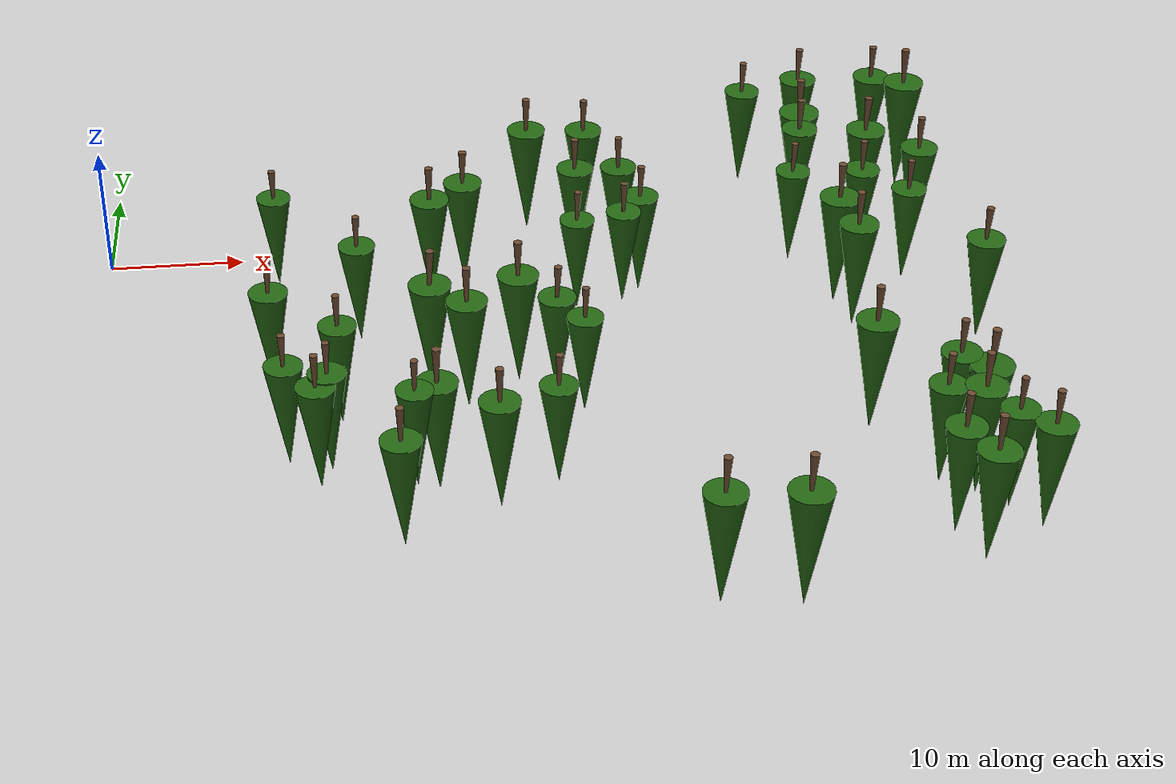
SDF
<sdf version="1.10">
 <model name="lehrforst_trees">
  <static>true</static>
  <link name="tree_0231">
   <collision name="tree_0231_collision">
    <pose>24.409 1.859 -3.799 3.142 0.036 0</pose>
    <geometry><cone><radius>0.351</radius><length>5.616</length></cone></geometry>
   </collision>
   <visual name="tree_0231_trunk">
    <pose>24.409 1.859 -3.799 3.142 0.036 0</pose>
    <geometry><cone><radius>0.351</radius><length>5.616</length></cone></geometry>
    <material>
     <ambient>0.42 0.29 0.19 1</ambient>
     <diffuse>0.42 0.29 0.19 1</diffuse>
     <specular>0.42 0.29 0.19 1</specular>
    </material>
   </visual>
   <visual name="tree_0231_leaves">
    <pose>24.409 1.859 -9.415 3.142 0 0</pose>
    <geometry><cone><radius>1.755</radius><length>10.530</length></cone></geometry>
    <material>
     <ambient>0.14 0.40 0.07 1</ambient>
     <diffuse>0.14 0.40 0.07 1</diffuse>
     <specular>0.14 0.40 0.07 1</specular>
    </material>
   </visual>
  </link>
  <link name="tree_0234">
   <collision name="tree_0234_collision">
    <pose>67.581 24.981 0.108 3.142 0.001 0</pose>
    <geometry><cone><radius>0.349</radius><length>5.584</length></cone></geometry>
   </collision>
   <visual name="tree_0234_trunk">
    <pose>67.581 24.981 0.108 3.142 0.001 0</pose>
    <geometry><cone><radius>0.349</radius><length>5.584</length></cone></geometry>
    <material>
     <ambient>0.42 0.29 0.19 1</ambient>
     <diffuse>0.42 0.29 0.19 1</diffuse>
     <specular>0.42 0.29 0.19 1</specular>
    </material>
   </visual>
   <visual name="tree_0234_leaves">
    <pose>67.581 24.981 -5.476 3.142 0 0</pose>
    <geometry><cone><radius>1.745</radius><length>10.470</length></cone></geometry>
    <material>
     <ambient>0.14 0.40 0.07 1</ambient>
     <diffuse>0.14 0.40 0.07 1</diffuse>
     <specular>0.14 0.40 0.07 1</specular>
    </material>
   </visual>
  </link>
  <link name="tree_0238">
   <collision name="tree_0238_collision">
    <pose>57.901 22.753 -1.237 3.142 0.011 0</pose>
    <geometry><cone><radius>0.348</radius><length>5.568</length></cone></geometry>
   </collision>
   <visual name="tree_0238_trunk">
    <pose>57.901 22.753 -1.237 3.142 0.011 0</pose>
    <geometry><cone><radius>0.348</radius><length>5.568</length></cone></geometry>
    <material>
     <ambient>0.42 0.29 0.19 1</ambient>
     <diffuse>0.42 0.29 0.19 1</diffuse>
     <specular>0.42 0.29 0.19 1</specular>
    </material>
   </visual>
   <visual name="tree_0238_leaves">
    <pose>57.901 22.753 -6.805 3.142 0 0</pose>
    <geometry><cone><radius>1.740</radius><length>10.440</length></cone></geometry>
    <material>
     <ambient>0.14 0.40 0.07 1</ambient>
     <diffuse>0.14 0.40 0.07 1</diffuse>
     <specular>0.14 0.40 0.07 1</specular>
    </material>
   </visual>
  </link>
  <link name="tree_0250">
   <collision name="tree_0250_collision">
    <pose>58.799 8.423 -1.479 3.142 0.009 0</pose>
    <geometry><cone><radius>0.343</radius><length>5.488</length></cone></geometry>
   </collision>
   <visual name="tree_0250_trunk">
    <pose>58.799 8.423 -1.479 3.142 0.009 0</pose>
    <geometry><cone><radius>0.343</radius><length>5.488</length></cone></geometry>
    <material>
     <ambient>0.42 0.29 0.19 1</ambient>
     <diffuse>0.42 0.29 0.19 1</diffuse>
     <specular>0.42 0.29 0.19 1</specular>
    </material>
   </visual>
   <visual name="tree_0250_leaves">
    <pose>58.799 8.423 -6.967 3.142 0 0</pose>
    <geometry><cone><radius>1.715</radius><length>10.290</length></cone></geometry>
    <material>
     <ambient>0.14 0.40 0.07 1</ambient>
     <diffuse>0.14 0.40 0.07 1</diffuse>
     <specular>0.14 0.40 0.07 1</specular>
    </material>
   </visual>
  </link>
  <link name="tree_0252">
   <collision name="tree_0252_collision">
    <pose>49.555 -28.673 -2.730 3.142 0.026 0</pose>
    <geometry><cone><radius>0.343</radius><length>5.488</length></cone></geometry>
   </collision>
   <visual name="tree_0252_trunk">
    <pose>49.555 -28.673 -2.730 3.142 0.026 0</pose>
    <geometry><cone><radius>0.343</radius><length>5.488</length></cone></geometry>
    <material>
     <ambient>0.42 0.29 0.19 1</ambient>
     <diffuse>0.42 0.29 0.19 1</diffuse>
     <specular>0.42 0.29 0.19 1</specular>
    </material>
   </visual>
   <visual name="tree_0252_leaves">
    <pose>49.555 -28.673 -8.218 3.142 0 0</pose>
    <geometry><cone><radius>1.715</radius><length>10.290</length></cone></geometry>
    <material>
     <ambient>0.14 0.40 0.07 1</ambient>
     <diffuse>0.14 0.40 0.07 1</diffuse>
     <specular>0.14 0.40 0.07 1</specular>
    </material>
   </visual>
  </link>
  <link name="tree_0253">
   <collision name="tree_0253_collision">
    <pose>64.900 -17.749 -0.722 3.142 0.026 0</pose>
    <geometry><cone><radius>0.343</radius><length>5.488</length></cone></geometry>
   </collision>
   <visual name="tree_0253_trunk">
    <pose>64.900 -17.749 -0.722 3.142 0.026 0</pose>
    <geometry><cone><radius>0.343</radius><length>5.488</length></cone></geometry>
    <material>
     <ambient>0.42 0.29 0.19 1</ambient>
     <diffuse>0.42 0.29 0.19 1</diffuse>
     <specular>0.42 0.29 0.19 1</specular>
    </material>
   </visual>
   <visual name="tree_0253_leaves">
    <pose>64.900 -17.749 -6.210 3.142 0 0</pose>
    <geometry><cone><radius>1.715</radius><length>10.290</length></cone></geometry>
    <material>
     <ambient>0.14 0.40 0.07 1</ambient>
     <diffuse>0.14 0.40 0.07 1</diffuse>
     <specular>0.14 0.40 0.07 1</specular>
    </material>
   </visual>
  </link>
  <link name="tree_0259">
   <collision name="tree_0259_collision">
    <pose>31.504 2.118 -3.479 3.142 0.010 0</pose>
    <geometry><cone><radius>0.340</radius><length>5.440</length></cone></geometry>
   </collision>
   <visual name="tree_0259_trunk">
    <pose>31.504 2.118 -3.479 3.142 0.010 0</pose>
    <geometry><cone><radius>0.340</radius><length>5.440</length></cone></geometry>
    <material>
     <ambient>0.42 0.29 0.19 1</ambient>
     <diffuse>0.42 0.29 0.19 1</diffuse>
     <specular>0.42 0.29 0.19 1</specular>
    </material>
   </visual>
   <visual name="tree_0259_leaves">
    <pose>31.504 2.118 -8.919 3.142 0 0</pose>
    <geometry><cone><radius>1.700</radius><length>10.200</length></cone></geometry>
    <material>
     <ambient>0.14 0.40 0.07 1</ambient>
     <diffuse>0.14 0.40 0.07 1</diffuse>
     <specular>0.14 0.40 0.07 1</specular>
    </material>
   </visual>
  </link>
  <link name="tree_0262">
   <collision name="tree_0262_collision">
    <pose>62.890 18.310 -0.785 3.142 0.031 0</pose>
    <geometry><cone><radius>0.338</radius><length>5.408</length></cone></geometry>
   </collision>
   <visual name="tree_0262_trunk">
    <pose>62.890 18.310 -0.785 3.142 0.031 0</pose>
    <geometry><cone><radius>0.338</radius><length>5.408</length></cone></geometry>
    <material>
     <ambient>0.42 0.29 0.19 1</ambient>
     <diffuse>0.42 0.29 0.19 1</diffuse>
     <specular>0.42 0.29 0.19 1</specular>
    </material>
   </visual>
   <visual name="tree_0262_leaves">
    <pose>62.890 18.310 -6.193 3.142 0 0</pose>
    <geometry><cone><radius>1.690</radius><length>10.140</length></cone></geometry>
    <material>
     <ambient>0.14 0.40 0.07 1</ambient>
     <diffuse>0.14 0.40 0.07 1</diffuse>
     <specular>0.14 0.40 0.07 1</specular>
    </material>
   </visual>
  </link>
  <link name="tree_0263">
   <collision name="tree_0263_collision">
    <pose>27.186 -1.236 -3.514 3.142 0.017 0</pose>
    <geometry><cone><radius>0.338</radius><length>5.408</length></cone></geometry>
   </collision>
   <visual name="tree_0263_trunk">
    <pose>27.186 -1.236 -3.514 3.142 0.017 0</pose>
    <geometry><cone><radius>0.338</radius><length>5.408</length></cone></geometry>
    <material>
     <ambient>0.42 0.29 0.19 1</ambient>
     <diffuse>0.42 0.29 0.19 1</diffuse>
     <specular>0.42 0.29 0.19 1</specular>
    </material>
   </visual>
   <visual name="tree_0263_leaves">
    <pose>27.186 -1.236 -8.922 3.142 0 0</pose>
    <geometry><cone><radius>1.690</radius><length>10.140</length></cone></geometry>
    <material>
     <ambient>0.14 0.40 0.07 1</ambient>
     <diffuse>0.14 0.40 0.07 1</diffuse>
     <specular>0.14 0.40 0.07 1</specular>
    </material>
   </visual>
  </link>
  <link name="tree_0265">
   <collision name="tree_0265_collision">
    <pose>58.102 -9.891 -1.562 3.142 0.013 0</pose>
    <geometry><cone><radius>0.337</radius><length>5.392</length></cone></geometry>
   </collision>
   <visual name="tree_0265_trunk">
    <pose>58.102 -9.891 -1.562 3.142 0.013 0</pose>
    <geometry><cone><radius>0.337</radius><length>5.392</length></cone></geometry>
    <material>
     <ambient>0.42 0.29 0.19 1</ambient>
     <diffuse>0.42 0.29 0.19 1</diffuse>
     <specular>0.42 0.29 0.19 1</specular>
    </material>
   </visual>
   <visual name="tree_0265_leaves">
    <pose>58.102 -9.891 -6.954 3.142 0 0</pose>
    <geometry><cone><radius>1.685</radius><length>10.110</length></cone></geometry>
    <material>
     <ambient>0.14 0.40 0.07 1</ambient>
     <diffuse>0.14 0.40 0.07 1</diffuse>
     <specular>0.14 0.40 0.07 1</specular>
    </material>
   </visual>
  </link>
  <link name="tree_0270">
   <collision name="tree_0270_collision">
    <pose>25.022 16.303 -4.450 3.142 0.013 0</pose>
    <geometry><cone><radius>0.335</radius><length>5.360</length></cone></geometry>
   </collision>
   <visual name="tree_0270_trunk">
    <pose>25.022 16.303 -4.450 3.142 0.013 0</pose>
    <geometry><cone><radius>0.335</radius><length>5.360</length></cone></geometry>
    <material>
     <ambient>0.42 0.29 0.19 1</ambient>
     <diffuse>0.42 0.29 0.19 1</diffuse>
     <specular>0.42 0.29 0.19 1</specular>
    </material>
   </visual>
   <visual name="tree_0270_leaves">
    <pose>25.022 16.303 -9.810 3.142 0 0</pose>
    <geometry><cone><radius>1.675</radius><length>10.050</length></cone></geometry>
    <material>
     <ambient>0.14 0.40 0.07 1</ambient>
     <diffuse>0.14 0.40 0.07 1</diffuse>
     <specular>0.14 0.40 0.07 1</specular>
    </material>
   </visual>
  </link>
  <link name="tree_0271">
   <collision name="tree_0271_collision">
    <pose>43.701 -27.643 -3.267 3.142 0.028 0</pose>
    <geometry><cone><radius>0.335</radius><length>5.360</length></cone></geometry>
   </collision>
   <visual name="tree_0271_trunk">
    <pose>43.701 -27.643 -3.267 3.142 0.028 0</pose>
    <geometry><cone><radius>0.335</radius><length>5.360</length></cone></geometry>
    <material>
     <ambient>0.42 0.29 0.19 1</ambient>
     <diffuse>0.42 0.29 0.19 1</diffuse>
     <specular>0.42 0.29 0.19 1</specular>
    </material>
   </visual>
   <visual name="tree_0271_leaves">
    <pose>43.701 -27.643 -8.627 3.142 0 0</pose>
    <geometry><cone><radius>1.675</radius><length>10.050</length></cone></geometry>
    <material>
     <ambient>0.14 0.40 0.07 1</ambient>
     <diffuse>0.14 0.40 0.07 1</diffuse>
     <specular>0.14 0.40 0.07 1</specular>
    </material>
   </visual>
  </link>
  <link name="tree_0273">
   <collision name="tree_0273_collision">
    <pose>34.035 25.412 -3.232 3.142 0.016 0</pose>
    <geometry><cone><radius>0.334</radius><length>5.344</length></cone></geometry>
   </collision>
   <visual name="tree_0273_trunk">
    <pose>34.035 25.412 -3.232 3.142 0.016 0</pose>
    <geometry><cone><radius>0.334</radius><length>5.344</length></cone></geometry>
    <material>
     <ambient>0.42 0.29 0.19 1</ambient>
     <diffuse>0.42 0.29 0.19 1</diffuse>
     <specular>0.42 0.29 0.19 1</specular>
    </material>
   </visual>
   <visual name="tree_0273_leaves">
    <pose>34.035 25.412 -8.576 3.142 0 0</pose>
    <geometry><cone><radius>1.670</radius><length>10.020</length></cone></geometry>
    <material>
     <ambient>0.14 0.40 0.07 1</ambient>
     <diffuse>0.14 0.40 0.07 1</diffuse>
     <specular>0.14 0.40 0.07 1</specular>
    </material>
   </visual>
  </link>
  <link name="tree_0275">
   <collision name="tree_0275_collision">
    <pose>24.317 -11.821 -3.728 3.142 0.016 0</pose>
    <geometry><cone><radius>0.333</radius><length>5.328</length></cone></geometry>
   </collision>
   <visual name="tree_0275_trunk">
    <pose>24.317 -11.821 -3.728 3.142 0.016 0</pose>
    <geometry><cone><radius>0.333</radius><length>5.328</length></cone></geometry>
    <material>
     <ambient>0.42 0.29 0.19 1</ambient>
     <diffuse>0.42 0.29 0.19 1</diffuse>
     <specular>0.42 0.29 0.19 1</specular>
    </material>
   </visual>
   <visual name="tree_0275_leaves">
    <pose>24.317 -11.821 -9.056 3.142 0 0</pose>
    <geometry><cone><radius>1.665</radius><length>9.990</length></cone></geometry>
    <material>
     <ambient>0.14 0.40 0.07 1</ambient>
     <diffuse>0.14 0.40 0.07 1</diffuse>
     <specular>0.14 0.40 0.07 1</specular>
    </material>
   </visual>
  </link>
  <link name="tree_0281">
   <collision name="tree_0281_collision">
    <pose>27.969 18.211 -4.097 3.142 0.026 0</pose>
    <geometry><cone><radius>0.330</radius><length>5.280</length></cone></geometry>
   </collision>
   <visual name="tree_0281_trunk">
    <pose>27.969 18.211 -4.097 3.142 0.026 0</pose>
    <geometry><cone><radius>0.330</radius><length>5.280</length></cone></geometry>
    <material>
     <ambient>0.42 0.29 0.19 1</ambient>
     <diffuse>0.42 0.29 0.19 1</diffuse>
     <specular>0.42 0.29 0.19 1</specular>
    </material>
   </visual>
   <visual name="tree_0281_leaves">
    <pose>27.969 18.211 -9.377 3.142 0 0</pose>
    <geometry><cone><radius>1.650</radius><length>9.900</length></cone></geometry>
    <material>
     <ambient>0.14 0.40 0.07 1</ambient>
     <diffuse>0.14 0.40 0.07 1</diffuse>
     <specular>0.14 0.40 0.07 1</specular>
    </material>
   </visual>
  </link>
  <link name="tree_0286">
   <collision name="tree_0286_collision">
    <pose>63.034 -27.394 -1.163 3.142 0.020 0</pose>
    <geometry><cone><radius>0.328</radius><length>5.248</length></cone></geometry>
   </collision>
   <visual name="tree_0286_trunk">
    <pose>63.034 -27.394 -1.163 3.142 0.020 0</pose>
    <geometry><cone><radius>0.328</radius><length>5.248</length></cone></geometry>
    <material>
     <ambient>0.42 0.29 0.19 1</ambient>
     <diffuse>0.42 0.29 0.19 1</diffuse>
     <specular>0.42 0.29 0.19 1</specular>
    </material>
   </visual>
   <visual name="tree_0286_leaves">
    <pose>63.034 -27.394 -6.411 3.142 0 0</pose>
    <geometry><cone><radius>1.640</radius><length>9.840</length></cone></geometry>
    <material>
     <ambient>0.14 0.40 0.07 1</ambient>
     <diffuse>0.14 0.40 0.07 1</diffuse>
     <specular>0.14 0.40 0.07 1</specular>
    </material>
   </visual>
  </link>
  <link name="tree_0291">
   <collision name="tree_0291_collision">
    <pose>59.422 3.784 -1.303 3.142 0.007 0</pose>
    <geometry><cone><radius>0.327</radius><length>5.232</length></cone></geometry>
   </collision>
   <visual name="tree_0291_trunk">
    <pose>59.422 3.784 -1.303 3.142 0.007 0</pose>
    <geometry><cone><radius>0.327</radius><length>5.232</length></cone></geometry>
    <material>
     <ambient>0.42 0.29 0.19 1</ambient>
     <diffuse>0.42 0.29 0.19 1</diffuse>
     <specular>0.42 0.29 0.19 1</specular>
    </material>
   </visual>
   <visual name="tree_0291_leaves">
    <pose>59.422 3.784 -6.535 3.142 0 0</pose>
    <geometry><cone><radius>1.635</radius><length>9.810</length></cone></geometry>
    <material>
     <ambient>0.14 0.40 0.07 1</ambient>
     <diffuse>0.14 0.40 0.07 1</diffuse>
     <specular>0.14 0.40 0.07 1</specular>
    </material>
   </visual>
  </link>
  <link name="tree_0296">
   <collision name="tree_0296_collision">
    <pose>28.853 -14.649 -3.780 3.142 0.008 0</pose>
    <geometry><cone><radius>0.326</radius><length>5.216</length></cone></geometry>
   </collision>
   <visual name="tree_0296_trunk">
    <pose>28.853 -14.649 -3.780 3.142 0.008 0</pose>
    <geometry><cone><radius>0.326</radius><length>5.216</length></cone></geometry>
    <material>
     <ambient>0.42 0.29 0.19 1</ambient>
     <diffuse>0.42 0.29 0.19 1</diffuse>
     <specular>0.42 0.29 0.19 1</specular>
    </material>
   </visual>
   <visual name="tree_0296_leaves">
    <pose>28.853 -14.649 -8.996 3.142 0 0</pose>
    <geometry><cone><radius>1.630</radius><length>9.780</length></cone></geometry>
    <material>
     <ambient>0.14 0.40 0.07 1</ambient>
     <diffuse>0.14 0.40 0.07 1</diffuse>
     <specular>0.14 0.40 0.07 1</specular>
    </material>
   </visual>
  </link>
  <link name="tree_0304">
   <collision name="tree_0304_collision">
    <pose>63.774 -20.646 -0.511 3.142 0.011 0</pose>
    <geometry><cone><radius>0.322</radius><length>5.152</length></cone></geometry>
   </collision>
   <visual name="tree_0304_trunk">
    <pose>63.774 -20.646 -0.511 3.142 0.011 0</pose>
    <geometry><cone><radius>0.322</radius><length>5.152</length></cone></geometry>
    <material>
     <ambient>0.42 0.29 0.19 1</ambient>
     <diffuse>0.42 0.29 0.19 1</diffuse>
     <specular>0.42 0.29 0.19 1</specular>
    </material>
   </visual>
   <visual name="tree_0304_leaves">
    <pose>63.774 -20.646 -5.663 3.142 0 0</pose>
    <geometry><cone><radius>1.610</radius><length>9.660</length></cone></geometry>
    <material>
     <ambient>0.14 0.40 0.07 1</ambient>
     <diffuse>0.14 0.40 0.07 1</diffuse>
     <specular>0.14 0.40 0.07 1</specular>
    </material>
   </visual>
  </link>
  <link name="tree_0306">
   <collision name="tree_0306_collision">
    <pose>38.941 23.874 -2.659 3.142 0.024 0</pose>
    <geometry><cone><radius>0.321</radius><length>5.136</length></cone></geometry>
   </collision>
   <visual name="tree_0306_trunk">
    <pose>38.941 23.874 -2.659 3.142 0.024 0</pose>
    <geometry><cone><radius>0.321</radius><length>5.136</length></cone></geometry>
    <material>
     <ambient>0.42 0.29 0.19 1</ambient>
     <diffuse>0.42 0.29 0.19 1</diffuse>
     <specular>0.42 0.29 0.19 1</specular>
    </material>
   </visual>
   <visual name="tree_0306_leaves">
    <pose>38.941 23.874 -7.795 3.142 0 0</pose>
    <geometry><cone><radius>1.605</radius><length>9.630</length></cone></geometry>
    <material>
     <ambient>0.14 0.40 0.07 1</ambient>
     <diffuse>0.14 0.40 0.07 1</diffuse>
     <specular>0.14 0.40 0.07 1</specular>
    </material>
   </visual>
  </link>
  <link name="tree_0307">
   <collision name="tree_0307_collision">
    <pose>21.382 -18.650 -3.888 3.142 0.015 0</pose>
    <geometry><cone><radius>0.321</radius><length>5.136</length></cone></geometry>
   </collision>
   <visual name="tree_0307_trunk">
    <pose>21.382 -18.650 -3.888 3.142 0.015 0</pose>
    <geometry><cone><radius>0.321</radius><length>5.136</length></cone></geometry>
    <material>
     <ambient>0.42 0.29 0.19 1</ambient>
     <diffuse>0.42 0.29 0.19 1</diffuse>
     <specular>0.42 0.29 0.19 1</specular>
    </material>
   </visual>
   <visual name="tree_0307_leaves">
    <pose>21.382 -18.650 -9.024 3.142 0 0</pose>
    <geometry><cone><radius>1.605</radius><length>9.630</length></cone></geometry>
    <material>
     <ambient>0.14 0.40 0.07 1</ambient>
     <diffuse>0.14 0.40 0.07 1</diffuse>
     <specular>0.14 0.40 0.07 1</specular>
    </material>
   </visual>
  </link>
  <link name="tree_0308">
   <collision name="tree_0308_collision">
    <pose>58.530 27.305 -0.382 3.142 0.013 0</pose>
    <geometry><cone><radius>0.320</radius><length>5.120</length></cone></geometry>
   </collision>
   <visual name="tree_0308_trunk">
    <pose>58.530 27.305 -0.382 3.142 0.013 0</pose>
    <geometry><cone><radius>0.320</radius><length>5.120</length></cone></geometry>
    <material>
     <ambient>0.42 0.29 0.19 1</ambient>
     <diffuse>0.42 0.29 0.19 1</diffuse>
     <specular>0.42 0.29 0.19 1</specular>
    </material>
   </visual>
   <visual name="tree_0308_leaves">
    <pose>58.530 27.305 -5.502 3.142 0 0</pose>
    <geometry><cone><radius>1.600</radius><length>9.600</length></cone></geometry>
    <material>
     <ambient>0.14 0.40 0.07 1</ambient>
     <diffuse>0.14 0.40 0.07 1</diffuse>
     <specular>0.14 0.40 0.07 1</specular>
    </material>
   </visual>
  </link>
  <link name="tree_0311">
   <collision name="tree_0311_collision">
    <pose>11.542 2.646 -4.286 3.142 0.034 0</pose>
    <geometry><cone><radius>0.319</radius><length>5.104</length></cone></geometry>
   </collision>
   <visual name="tree_0311_trunk">
    <pose>11.542 2.646 -4.286 3.142 0.034 0</pose>
    <geometry><cone><radius>0.319</radius><length>5.104</length></cone></geometry>
    <material>
     <ambient>0.42 0.29 0.19 1</ambient>
     <diffuse>0.42 0.29 0.19 1</diffuse>
     <specular>0.42 0.29 0.19 1</specular>
    </material>
   </visual>
   <visual name="tree_0311_leaves">
    <pose>11.542 2.646 -9.390 3.142 0 0</pose>
    <geometry><cone><radius>1.595</radius><length>9.570</length></cone></geometry>
    <material>
     <ambient>0.14 0.40 0.07 1</ambient>
     <diffuse>0.14 0.40 0.07 1</diffuse>
     <specular>0.14 0.40 0.07 1</specular>
    </material>
   </visual>
  </link>
  <link name="tree_0312">
   <collision name="tree_0312_collision">
    <pose>64.942 26.337 0.072 3.142 0.007 0</pose>
    <geometry><cone><radius>0.318</radius><length>5.088</length></cone></geometry>
   </collision>
   <visual name="tree_0312_trunk">
    <pose>64.942 26.337 0.072 3.142 0.007 0</pose>
    <geometry><cone><radius>0.318</radius><length>5.088</length></cone></geometry>
    <material>
     <ambient>0.42 0.29 0.19 1</ambient>
     <diffuse>0.42 0.29 0.19 1</diffuse>
     <specular>0.42 0.29 0.19 1</specular>
    </material>
   </visual>
   <visual name="tree_0312_leaves">
    <pose>64.942 26.337 -5.016 3.142 0 0</pose>
    <geometry><cone><radius>1.590</radius><length>9.540</length></cone></geometry>
    <material>
     <ambient>0.14 0.40 0.07 1</ambient>
     <diffuse>0.14 0.40 0.07 1</diffuse>
     <specular>0.14 0.40 0.07 1</specular>
    </material>
   </visual>
  </link>
  <link name="tree_0316">
   <collision name="tree_0316_collision">
    <pose>61.328 -24.705 -0.976 3.142 0.018 0</pose>
    <geometry><cone><radius>0.316</radius><length>5.056</length></cone></geometry>
   </collision>
   <visual name="tree_0316_trunk">
    <pose>61.328 -24.705 -0.976 3.142 0.018 0</pose>
    <geometry><cone><radius>0.316</radius><length>5.056</length></cone></geometry>
    <material>
     <ambient>0.42 0.29 0.19 1</ambient>
     <diffuse>0.42 0.29 0.19 1</diffuse>
     <specular>0.42 0.29 0.19 1</specular>
    </material>
   </visual>
   <visual name="tree_0316_leaves">
    <pose>61.328 -24.705 -6.032 3.142 0 0</pose>
    <geometry><cone><radius>1.580</radius><length>9.480</length></cone></geometry>
    <material>
     <ambient>0.14 0.40 0.07 1</ambient>
     <diffuse>0.14 0.40 0.07 1</diffuse>
     <specular>0.14 0.40 0.07 1</specular>
    </material>
   </visual>
  </link>
  <link name="tree_0320">
   <collision name="tree_0320_collision">
    <pose>66.608 14.157 -0.467 3.142 0.008 0</pose>
    <geometry><cone><radius>0.316</radius><length>5.056</length></cone></geometry>
   </collision>
   <visual name="tree_0320_trunk">
    <pose>66.608 14.157 -0.467 3.142 0.008 0</pose>
    <geometry><cone><radius>0.316</radius><length>5.056</length></cone></geometry>
    <material>
     <ambient>0.42 0.29 0.19 1</ambient>
     <diffuse>0.42 0.29 0.19 1</diffuse>
     <specular>0.42 0.29 0.19 1</specular>
    </material>
   </visual>
   <visual name="tree_0320_leaves">
    <pose>66.608 14.157 -5.523 3.142 0 0</pose>
    <geometry><cone><radius>1.580</radius><length>9.480</length></cone></geometry>
    <material>
     <ambient>0.14 0.40 0.07 1</ambient>
     <diffuse>0.14 0.40 0.07 1</diffuse>
     <specular>0.14 0.40 0.07 1</specular>
    </material>
   </visual>
  </link>
  <link name="tree_0325">
   <collision name="tree_0325_collision">
    <pose>15.254 -11.534 -3.751 3.142 0.016 0</pose>
    <geometry><cone><radius>0.314</radius><length>5.024</length></cone></geometry>
   </collision>
   <visual name="tree_0325_trunk">
    <pose>15.254 -11.534 -3.751 3.142 0.016 0</pose>
    <geometry><cone><radius>0.314</radius><length>5.024</length></cone></geometry>
    <material>
     <ambient>0.42 0.29 0.19 1</ambient>
     <diffuse>0.42 0.29 0.19 1</diffuse>
     <specular>0.42 0.29 0.19 1</specular>
    </material>
   </visual>
   <visual name="tree_0325_leaves">
    <pose>15.254 -11.534 -8.775 3.142 0 0</pose>
    <geometry><cone><radius>1.570</radius><length>9.420</length></cone></geometry>
    <material>
     <ambient>0.14 0.40 0.07 1</ambient>
     <diffuse>0.14 0.40 0.07 1</diffuse>
     <specular>0.14 0.40 0.07 1</specular>
    </material>
   </visual>
  </link>
  <link name="tree_0326">
   <collision name="tree_0326_collision">
    <pose>63.068 -15.884 -0.745 3.142 0.023 0</pose>
    <geometry><cone><radius>0.314</radius><length>5.024</length></cone></geometry>
   </collision>
   <visual name="tree_0326_trunk">
    <pose>63.068 -15.884 -0.745 3.142 0.023 0</pose>
    <geometry><cone><radius>0.314</radius><length>5.024</length></cone></geometry>
    <material>
     <ambient>0.42 0.29 0.19 1</ambient>
     <diffuse>0.42 0.29 0.19 1</diffuse>
     <specular>0.42 0.29 0.19 1</specular>
    </material>
   </visual>
   <visual name="tree_0326_leaves">
    <pose>63.068 -15.884 -5.769 3.142 0 0</pose>
    <geometry><cone><radius>1.570</radius><length>9.420</length></cone></geometry>
    <material>
     <ambient>0.14 0.40 0.07 1</ambient>
     <diffuse>0.14 0.40 0.07 1</diffuse>
     <specular>0.14 0.40 0.07 1</specular>
    </material>
   </visual>
  </link>
  <link name="tree_0334">
   <collision name="tree_0334_collision">
    <pose>68.649 -0.917 -0.421 3.142 0.032 0</pose>
    <geometry><cone><radius>0.312</radius><length>4.992</length></cone></geometry>
   </collision>
   <visual name="tree_0334_trunk">
    <pose>68.649 -0.917 -0.421 3.142 0.032 0</pose>
    <geometry><cone><radius>0.312</radius><length>4.992</length></cone></geometry>
    <material>
     <ambient>0.42 0.29 0.19 1</ambient>
     <diffuse>0.42 0.29 0.19 1</diffuse>
     <specular>0.42 0.29 0.19 1</specular>
    </material>
   </visual>
   <visual name="tree_0334_leaves">
    <pose>68.649 -0.917 -5.413 3.142 0 0</pose>
    <geometry><cone><radius>1.560</radius><length>9.360</length></cone></geometry>
    <material>
     <ambient>0.14 0.40 0.07 1</ambient>
     <diffuse>0.14 0.40 0.07 1</diffuse>
     <specular>0.14 0.40 0.07 1</specular>
    </material>
   </visual>
  </link>
  <link name="tree_0338">
   <collision name="tree_0338_collision">
    <pose>37.598 17.767 -2.964 3.142 0.007 0</pose>
    <geometry><cone><radius>0.311</radius><length>4.976</length></cone></geometry>
   </collision>
   <visual name="tree_0338_trunk">
    <pose>37.598 17.767 -2.964 3.142 0.007 0</pose>
    <geometry><cone><radius>0.311</radius><length>4.976</length></cone></geometry>
    <material>
     <ambient>0.42 0.29 0.19 1</ambient>
     <diffuse>0.42 0.29 0.19 1</diffuse>
     <specular>0.42 0.29 0.19 1</specular>
    </material>
   </visual>
   <visual name="tree_0338_leaves">
    <pose>37.598 17.767 -7.940 3.142 0 0</pose>
    <geometry><cone><radius>1.555</radius><length>9.330</length></cone></geometry>
    <material>
     <ambient>0.14 0.40 0.07 1</ambient>
     <diffuse>0.14 0.40 0.07 1</diffuse>
     <specular>0.14 0.40 0.07 1</specular>
    </material>
   </visual>
  </link>
  <link name="tree_0339">
   <collision name="tree_0339_collision">
    <pose>42.559 12.171 -2.699 3.142 0.034 0</pose>
    <geometry><cone><radius>0.310</radius><length>4.960</length></cone></geometry>
   </collision>
   <visual name="tree_0339_trunk">
    <pose>42.559 12.171 -2.699 3.142 0.034 0</pose>
    <geometry><cone><radius>0.310</radius><length>4.960</length></cone></geometry>
    <material>
     <ambient>0.42 0.29 0.19 1</ambient>
     <diffuse>0.42 0.29 0.19 1</diffuse>
     <specular>0.42 0.29 0.19 1</specular>
    </material>
   </visual>
   <visual name="tree_0339_leaves">
    <pose>42.559 12.171 -7.659 3.142 0 0</pose>
    <geometry><cone><radius>1.550</radius><length>9.300</length></cone></geometry>
    <material>
     <ambient>0.14 0.40 0.07 1</ambient>
     <diffuse>0.14 0.40 0.07 1</diffuse>
     <specular>0.14 0.40 0.07 1</specular>
    </material>
   </visual>
  </link>
  <link name="tree_0342">
   <collision name="tree_0342_collision">
    <pose>67.457 -25.881 -0.305 3.142 0.014 0</pose>
    <geometry><cone><radius>0.310</radius><length>4.960</length></cone></geometry>
   </collision>
   <visual name="tree_0342_trunk">
    <pose>67.457 -25.881 -0.305 3.142 0.014 0</pose>
    <geometry><cone><radius>0.310</radius><length>4.960</length></cone></geometry>
    <material>
     <ambient>0.42 0.29 0.19 1</ambient>
     <diffuse>0.42 0.29 0.19 1</diffuse>
     <specular>0.42 0.29 0.19 1</specular>
    </material>
   </visual>
   <visual name="tree_0342_leaves">
    <pose>67.457 -25.881 -5.265 3.142 0 0</pose>
    <geometry><cone><radius>1.550</radius><length>9.300</length></cone></geometry>
    <material>
     <ambient>0.14 0.40 0.07 1</ambient>
     <diffuse>0.14 0.40 0.07 1</diffuse>
     <specular>0.14 0.40 0.07 1</specular>
    </material>
   </visual>
  </link>
  <link name="tree_0343">
   <collision name="tree_0343_collision">
    <pose>41.262 17.009 -2.586 3.142 0.002 0</pose>
    <geometry><cone><radius>0.309</radius><length>4.944</length></cone></geometry>
   </collision>
   <visual name="tree_0343_trunk">
    <pose>41.262 17.009 -2.586 3.142 0.002 0</pose>
    <geometry><cone><radius>0.309</radius><length>4.944</length></cone></geometry>
    <material>
     <ambient>0.42 0.29 0.19 1</ambient>
     <diffuse>0.42 0.29 0.19 1</diffuse>
     <specular>0.42 0.29 0.19 1</specular>
    </material>
   </visual>
   <visual name="tree_0343_leaves">
    <pose>41.262 17.009 -7.530 3.142 0 0</pose>
    <geometry><cone><radius>1.545</radius><length>9.270</length></cone></geometry>
    <material>
     <ambient>0.14 0.40 0.07 1</ambient>
     <diffuse>0.14 0.40 0.07 1</diffuse>
     <specular>0.14 0.40 0.07 1</specular>
    </material>
   </visual>
  </link>
  <link name="tree_0347">
   <collision name="tree_0347_collision">
    <pose>34.279 -2.021 -3.095 3.142 0.035 0</pose>
    <geometry><cone><radius>0.307</radius><length>4.912</length></cone></geometry>
   </collision>
   <visual name="tree_0347_trunk">
    <pose>34.279 -2.021 -3.095 3.142 0.035 0</pose>
    <geometry><cone><radius>0.307</radius><length>4.912</length></cone></geometry>
    <material>
     <ambient>0.42 0.29 0.19 1</ambient>
     <diffuse>0.42 0.29 0.19 1</diffuse>
     <specular>0.42 0.29 0.19 1</specular>
    </material>
   </visual>
   <visual name="tree_0347_leaves">
    <pose>34.279 -2.021 -8.007 3.142 0 0</pose>
    <geometry><cone><radius>1.535</radius><length>9.210</length></cone></geometry>
    <material>
     <ambient>0.14 0.40 0.07 1</ambient>
     <diffuse>0.14 0.40 0.07 1</diffuse>
     <specular>0.14 0.40 0.07 1</specular>
    </material>
   </visual>
  </link>
  <link name="tree_0348">
   <collision name="tree_0348_collision">
    <pose>57.364 19.585 -1.139 3.142 0.007 0</pose>
    <geometry><cone><radius>0.307</radius><length>4.912</length></cone></geometry>
   </collision>
   <visual name="tree_0348_trunk">
    <pose>57.364 19.585 -1.139 3.142 0.007 0</pose>
    <geometry><cone><radius>0.307</radius><length>4.912</length></cone></geometry>
    <material>
     <ambient>0.42 0.29 0.19 1</ambient>
     <diffuse>0.42 0.29 0.19 1</diffuse>
     <specular>0.42 0.29 0.19 1</specular>
    </material>
   </visual>
   <visual name="tree_0348_leaves">
    <pose>57.364 19.585 -6.051 3.142 0 0</pose>
    <geometry><cone><radius>1.535</radius><length>9.210</length></cone></geometry>
    <material>
     <ambient>0.14 0.40 0.07 1</ambient>
     <diffuse>0.14 0.40 0.07 1</diffuse>
     <specular>0.14 0.40 0.07 1</specular>
    </material>
   </visual>
  </link>
  <link name="tree_0349">
   <collision name="tree_0349_collision">
    <pose>16.989 -3.622 -3.646 3.142 0.011 0</pose>
    <geometry><cone><radius>0.307</radius><length>4.912</length></cone></geometry>
   </collision>
   <visual name="tree_0349_trunk">
    <pose>16.989 -3.622 -3.646 3.142 0.011 0</pose>
    <geometry><cone><radius>0.307</radius><length>4.912</length></cone></geometry>
    <material>
     <ambient>0.42 0.29 0.19 1</ambient>
     <diffuse>0.42 0.29 0.19 1</diffuse>
     <specular>0.42 0.29 0.19 1</specular>
    </material>
   </visual>
   <visual name="tree_0349_leaves">
    <pose>16.989 -3.622 -8.558 3.142 0 0</pose>
    <geometry><cone><radius>1.535</radius><length>9.210</length></cone></geometry>
    <material>
     <ambient>0.14 0.40 0.07 1</ambient>
     <diffuse>0.14 0.40 0.07 1</diffuse>
     <specular>0.14 0.40 0.07 1</specular>
    </material>
   </visual>
  </link>
  <link name="tree_0351">
   <collision name="tree_0351_collision">
    <pose>18.712 9.028 -4.290 3.142 0.016 0</pose>
    <geometry><cone><radius>0.306</radius><length>4.896</length></cone></geometry>
   </collision>
   <visual name="tree_0351_trunk">
    <pose>18.712 9.028 -4.290 3.142 0.016 0</pose>
    <geometry><cone><radius>0.306</radius><length>4.896</length></cone></geometry>
    <material>
     <ambient>0.42 0.29 0.19 1</ambient>
     <diffuse>0.42 0.29 0.19 1</diffuse>
     <specular>0.42 0.29 0.19 1</specular>
    </material>
   </visual>
   <visual name="tree_0351_leaves">
    <pose>18.712 9.028 -9.186 3.142 0 0</pose>
    <geometry><cone><radius>1.530</radius><length>9.180</length></cone></geometry>
    <material>
     <ambient>0.14 0.40 0.07 1</ambient>
     <diffuse>0.14 0.40 0.07 1</diffuse>
     <specular>0.14 0.40 0.07 1</specular>
    </material>
   </visual>
  </link>
  <link name="tree_0352">
   <collision name="tree_0352_collision">
    <pose>12.844 -8.626 -3.706 3.142 0.009 0</pose>
    <geometry><cone><radius>0.306</radius><length>4.896</length></cone></geometry>
   </collision>
   <visual name="tree_0352_trunk">
    <pose>12.844 -8.626 -3.706 3.142 0.009 0</pose>
    <geometry><cone><radius>0.306</radius><length>4.896</length></cone></geometry>
    <material>
     <ambient>0.42 0.29 0.19 1</ambient>
     <diffuse>0.42 0.29 0.19 1</diffuse>
     <specular>0.42 0.29 0.19 1</specular>
    </material>
   </visual>
   <visual name="tree_0352_leaves">
    <pose>12.844 -8.626 -8.602 3.142 0 0</pose>
    <geometry><cone><radius>1.530</radius><length>9.180</length></cone></geometry>
    <material>
     <ambient>0.14 0.40 0.07 1</ambient>
     <diffuse>0.14 0.40 0.07 1</diffuse>
     <specular>0.14 0.40 0.07 1</specular>
    </material>
   </visual>
  </link>
  <link name="tree_0359">
   <collision name="tree_0359_collision">
    <pose>16.137 -10.009 -3.621 3.142 0.018 0</pose>
    <geometry><cone><radius>0.304</radius><length>4.864</length></cone></geometry>
   </collision>
   <visual name="tree_0359_trunk">
    <pose>16.137 -10.009 -3.621 3.142 0.018 0</pose>
    <geometry><cone><radius>0.304</radius><length>4.864</length></cone></geometry>
    <material>
     <ambient>0.42 0.29 0.19 1</ambient>
     <diffuse>0.42 0.29 0.19 1</diffuse>
     <specular>0.42 0.29 0.19 1</specular>
    </material>
   </visual>
   <visual name="tree_0359_leaves">
    <pose>16.137 -10.009 -8.485 3.142 0 0</pose>
    <geometry><cone><radius>1.520</radius><length>9.120</length></cone></geometry>
    <material>
     <ambient>0.14 0.40 0.07 1</ambient>
     <diffuse>0.14 0.40 0.07 1</diffuse>
     <specular>0.14 0.40 0.07 1</specular>
    </material>
   </visual>
  </link>
  <link name="tree_0361">
   <collision name="tree_0361_collision">
    <pose>53.452 26.778 -1.079 3.142 0.019 0</pose>
    <geometry><cone><radius>0.303</radius><length>4.848</length></cone></geometry>
   </collision>
   <visual name="tree_0361_trunk">
    <pose>53.452 26.778 -1.079 3.142 0.019 0</pose>
    <geometry><cone><radius>0.303</radius><length>4.848</length></cone></geometry>
    <material>
     <ambient>0.42 0.29 0.19 1</ambient>
     <diffuse>0.42 0.29 0.19 1</diffuse>
     <specular>0.42 0.29 0.19 1</specular>
    </material>
   </visual>
   <visual name="tree_0361_leaves">
    <pose>53.452 26.778 -5.927 3.142 0 0</pose>
    <geometry><cone><radius>1.515</radius><length>9.090</length></cone></geometry>
    <material>
     <ambient>0.14 0.40 0.07 1</ambient>
     <diffuse>0.14 0.40 0.07 1</diffuse>
     <specular>0.14 0.40 0.07 1</specular>
    </material>
   </visual>
  </link>
  <link name="tree_0364">
   <collision name="tree_0364_collision">
    <pose>33.336 -13.698 -3.286 3.142 0.027 0</pose>
    <geometry><cone><radius>0.299</radius><length>4.784</length></cone></geometry>
   </collision>
   <visual name="tree_0364_trunk">
    <pose>33.336 -13.698 -3.286 3.142 0.027 0</pose>
    <geometry><cone><radius>0.299</radius><length>4.784</length></cone></geometry>
    <material>
     <ambient>0.42 0.29 0.19 1</ambient>
     <diffuse>0.42 0.29 0.19 1</diffuse>
     <specular>0.42 0.29 0.19 1</specular>
    </material>
   </visual>
   <visual name="tree_0364_leaves">
    <pose>33.336 -13.698 -8.070 3.142 0 0</pose>
    <geometry><cone><radius>1.495</radius><length>8.970</length></cone></geometry>
    <material>
     <ambient>0.14 0.40 0.07 1</ambient>
     <diffuse>0.14 0.40 0.07 1</diffuse>
     <specular>0.14 0.40 0.07 1</specular>
    </material>
   </visual>
  </link>
  <link name="tree_0368">
   <collision name="tree_0368_collision">
    <pose>61.265 11.833 -0.968 3.142 0.013 0</pose>
    <geometry><cone><radius>0.297</radius><length>4.752</length></cone></geometry>
   </collision>
   <visual name="tree_0368_trunk">
    <pose>61.265 11.833 -0.968 3.142 0.013 0</pose>
    <geometry><cone><radius>0.297</radius><length>4.752</length></cone></geometry>
    <material>
     <ambient>0.42 0.29 0.19 1</ambient>
     <diffuse>0.42 0.29 0.19 1</diffuse>
     <specular>0.42 0.29 0.19 1</specular>
    </material>
   </visual>
   <visual name="tree_0368_leaves">
    <pose>61.265 11.833 -5.720 3.142 0 0</pose>
    <geometry><cone><radius>1.485</radius><length>8.910</length></cone></geometry>
    <material>
     <ambient>0.14 0.40 0.07 1</ambient>
     <diffuse>0.14 0.40 0.07 1</diffuse>
     <specular>0.14 0.40 0.07 1</specular>
    </material>
   </visual>
  </link>
  <link name="tree_0370">
   <collision name="tree_0370_collision">
    <pose>61.103 -20.025 -0.627 3.142 0.032 0</pose>
    <geometry><cone><radius>0.296</radius><length>4.736</length></cone></geometry>
   </collision>
   <visual name="tree_0370_trunk">
    <pose>61.103 -20.025 -0.627 3.142 0.032 0</pose>
    <geometry><cone><radius>0.296</radius><length>4.736</length></cone></geometry>
    <material>
     <ambient>0.42 0.29 0.19 1</ambient>
     <diffuse>0.42 0.29 0.19 1</diffuse>
     <specular>0.42 0.29 0.19 1</specular>
    </material>
   </visual>
   <visual name="tree_0370_leaves">
    <pose>61.103 -20.025 -5.363 3.142 0 0</pose>
    <geometry><cone><radius>1.480</radius><length>8.880</length></cone></geometry>
    <material>
     <ambient>0.14 0.40 0.07 1</ambient>
     <diffuse>0.14 0.40 0.07 1</diffuse>
     <specular>0.14 0.40 0.07 1</specular>
    </material>
   </visual>
  </link>
  <link name="tree_0375">
   <collision name="tree_0375_collision">
    <pose>36.153 -5.321 -2.935 3.142 0.026 0</pose>
    <geometry><cone><radius>0.294</radius><length>4.704</length></cone></geometry>
   </collision>
   <visual name="tree_0375_trunk">
    <pose>36.153 -5.321 -2.935 3.142 0.026 0</pose>
    <geometry><cone><radius>0.294</radius><length>4.704</length></cone></geometry>
    <material>
     <ambient>0.42 0.29 0.19 1</ambient>
     <diffuse>0.42 0.29 0.19 1</diffuse>
     <specular>0.42 0.29 0.19 1</specular>
    </material>
   </visual>
   <visual name="tree_0375_leaves">
    <pose>36.153 -5.321 -7.639 3.142 0 0</pose>
    <geometry><cone><radius>1.470</radius><length>8.820</length></cone></geometry>
    <material>
     <ambient>0.14 0.40 0.07 1</ambient>
     <diffuse>0.14 0.40 0.07 1</diffuse>
     <specular>0.14 0.40 0.07 1</specular>
    </material>
   </visual>
  </link>
  <link name="tree_0378">
   <collision name="tree_0378_collision">
    <pose>40.882 9.712 -2.660 3.142 0.017 0</pose>
    <geometry><cone><radius>0.294</radius><length>4.704</length></cone></geometry>
   </collision>
   <visual name="tree_0378_trunk">
    <pose>40.882 9.712 -2.660 3.142 0.017 0</pose>
    <geometry><cone><radius>0.294</radius><length>4.704</length></cone></geometry>
    <material>
     <ambient>0.42 0.29 0.19 1</ambient>
     <diffuse>0.42 0.29 0.19 1</diffuse>
     <specular>0.42 0.29 0.19 1</specular>
    </material>
   </visual>
   <visual name="tree_0378_leaves">
    <pose>40.882 9.712 -7.364 3.142 0 0</pose>
    <geometry><cone><radius>1.470</radius><length>8.820</length></cone></geometry>
    <material>
     <ambient>0.14 0.40 0.07 1</ambient>
     <diffuse>0.14 0.40 0.07 1</diffuse>
     <specular>0.14 0.40 0.07 1</specular>
    </material>
   </visual>
  </link>
  <link name="tree_0379">
   <collision name="tree_0379_collision">
    <pose>65.352 -23.960 -0.273 3.142 0.033 0</pose>
    <geometry><cone><radius>0.293</radius><length>4.688</length></cone></geometry>
   </collision>
   <visual name="tree_0379_trunk">
    <pose>65.352 -23.960 -0.273 3.142 0.033 0</pose>
    <geometry><cone><radius>0.293</radius><length>4.688</length></cone></geometry>
    <material>
     <ambient>0.42 0.29 0.19 1</ambient>
     <diffuse>0.42 0.29 0.19 1</diffuse>
     <specular>0.42 0.29 0.19 1</specular>
    </material>
   </visual>
   <visual name="tree_0379_leaves">
    <pose>65.352 -23.960 -4.961 3.142 0 0</pose>
    <geometry><cone><radius>1.465</radius><length>8.790</length></cone></geometry>
    <material>
     <ambient>0.14 0.40 0.07 1</ambient>
     <diffuse>0.14 0.40 0.07 1</diffuse>
     <specular>0.14 0.40 0.07 1</specular>
    </material>
   </visual>
  </link>
  <link name="tree_0385">
   <collision name="tree_0385_collision">
    <pose>22.614 -13.105 -3.446 3.142 0.023 0</pose>
    <geometry><cone><radius>0.292</radius><length>4.672</length></cone></geometry>
   </collision>
   <visual name="tree_0385_trunk">
    <pose>22.614 -13.105 -3.446 3.142 0.023 0</pose>
    <geometry><cone><radius>0.292</radius><length>4.672</length></cone></geometry>
    <material>
     <ambient>0.42 0.29 0.19 1</ambient>
     <diffuse>0.42 0.29 0.19 1</diffuse>
     <specular>0.42 0.29 0.19 1</specular>
    </material>
   </visual>
   <visual name="tree_0385_leaves">
    <pose>22.614 -13.105 -8.118 3.142 0 0</pose>
    <geometry><cone><radius>1.460</radius><length>8.760</length></cone></geometry>
    <material>
     <ambient>0.14 0.40 0.07 1</ambient>
     <diffuse>0.14 0.40 0.07 1</diffuse>
     <specular>0.14 0.40 0.07 1</specular>
    </material>
   </visual>
  </link>
  <link name="tree_0389">
   <collision name="tree_0389_collision">
    <pose>11.723 19.518 -5.516 3.142 0.001 0</pose>
    <geometry><cone><radius>0.291</radius><length>4.656</length></cone></geometry>
   </collision>
   <visual name="tree_0389_trunk">
    <pose>11.723 19.518 -5.516 3.142 0.001 0</pose>
    <geometry><cone><radius>0.291</radius><length>4.656</length></cone></geometry>
    <material>
     <ambient>0.42 0.29 0.19 1</ambient>
     <diffuse>0.42 0.29 0.19 1</diffuse>
     <specular>0.42 0.29 0.19 1</specular>
    </material>
   </visual>
   <visual name="tree_0389_leaves">
    <pose>11.723 19.518 -10.172 3.142 0 0</pose>
    <geometry><cone><radius>1.455</radius><length>8.730</length></cone></geometry>
    <material>
     <ambient>0.14 0.40 0.07 1</ambient>
     <diffuse>0.14 0.40 0.07 1</diffuse>
     <specular>0.14 0.40 0.07 1</specular>
    </material>
   </visual>
  </link>
  <link name="tree_0391">
   <collision name="tree_0391_collision">
    <pose>64.334 7.772 -0.637 3.142 0.017 0</pose>
    <geometry><cone><radius>0.290</radius><length>4.640</length></cone></geometry>
   </collision>
   <visual name="tree_0391_trunk">
    <pose>64.334 7.772 -0.637 3.142 0.017 0</pose>
    <geometry><cone><radius>0.290</radius><length>4.640</length></cone></geometry>
    <material>
     <ambient>0.42 0.29 0.19 1</ambient>
     <diffuse>0.42 0.29 0.19 1</diffuse>
     <specular>0.42 0.29 0.19 1</specular>
    </material>
   </visual>
   <visual name="tree_0391_leaves">
    <pose>64.334 7.772 -5.277 3.142 0 0</pose>
    <geometry><cone><radius>1.450</radius><length>8.700</length></cone></geometry>
    <material>
     <ambient>0.14 0.40 0.07 1</ambient>
     <diffuse>0.14 0.40 0.07 1</diffuse>
     <specular>0.14 0.40 0.07 1</specular>
    </material>
   </visual>
  </link>
  <link name="tree_0393">
   <collision name="tree_0393_collision">
    <pose>55.596 12.886 -1.423 3.142 0.034 0</pose>
    <geometry><cone><radius>0.290</radius><length>4.640</length></cone></geometry>
   </collision>
   <visual name="tree_0393_trunk">
    <pose>55.596 12.886 -1.423 3.142 0.034 0</pose>
    <geometry><cone><radius>0.290</radius><length>4.640</length></cone></geometry>
    <material>
     <ambient>0.42 0.29 0.19 1</ambient>
     <diffuse>0.42 0.29 0.19 1</diffuse>
     <specular>0.42 0.29 0.19 1</specular>
    </material>
   </visual>
   <visual name="tree_0393_leaves">
    <pose>55.596 12.886 -6.063 3.142 0 0</pose>
    <geometry><cone><radius>1.450</radius><length>8.700</length></cone></geometry>
    <material>
     <ambient>0.14 0.40 0.07 1</ambient>
     <diffuse>0.14 0.40 0.07 1</diffuse>
     <specular>0.14 0.40 0.07 1</specular>
    </material>
   </visual>
  </link>
  <link name="tree_0394">
   <collision name="tree_0394_collision">
    <pose>36.950 9.149 -2.902 3.142 0.034 0</pose>
    <geometry><cone><radius>0.290</radius><length>4.640</length></cone></geometry>
   </collision>
   <visual name="tree_0394_trunk">
    <pose>36.950 9.149 -2.902 3.142 0.034 0</pose>
    <geometry><cone><radius>0.290</radius><length>4.640</length></cone></geometry>
    <material>
     <ambient>0.42 0.29 0.19 1</ambient>
     <diffuse>0.42 0.29 0.19 1</diffuse>
     <specular>0.42 0.29 0.19 1</specular>
    </material>
   </visual>
   <visual name="tree_0394_leaves">
    <pose>36.950 9.149 -7.542 3.142 0 0</pose>
    <geometry><cone><radius>1.450</radius><length>8.700</length></cone></geometry>
    <material>
     <ambient>0.14 0.40 0.07 1</ambient>
     <diffuse>0.14 0.40 0.07 1</diffuse>
     <specular>0.14 0.40 0.07 1</specular>
    </material>
   </visual>
  </link>
 </model>
</sdf>
